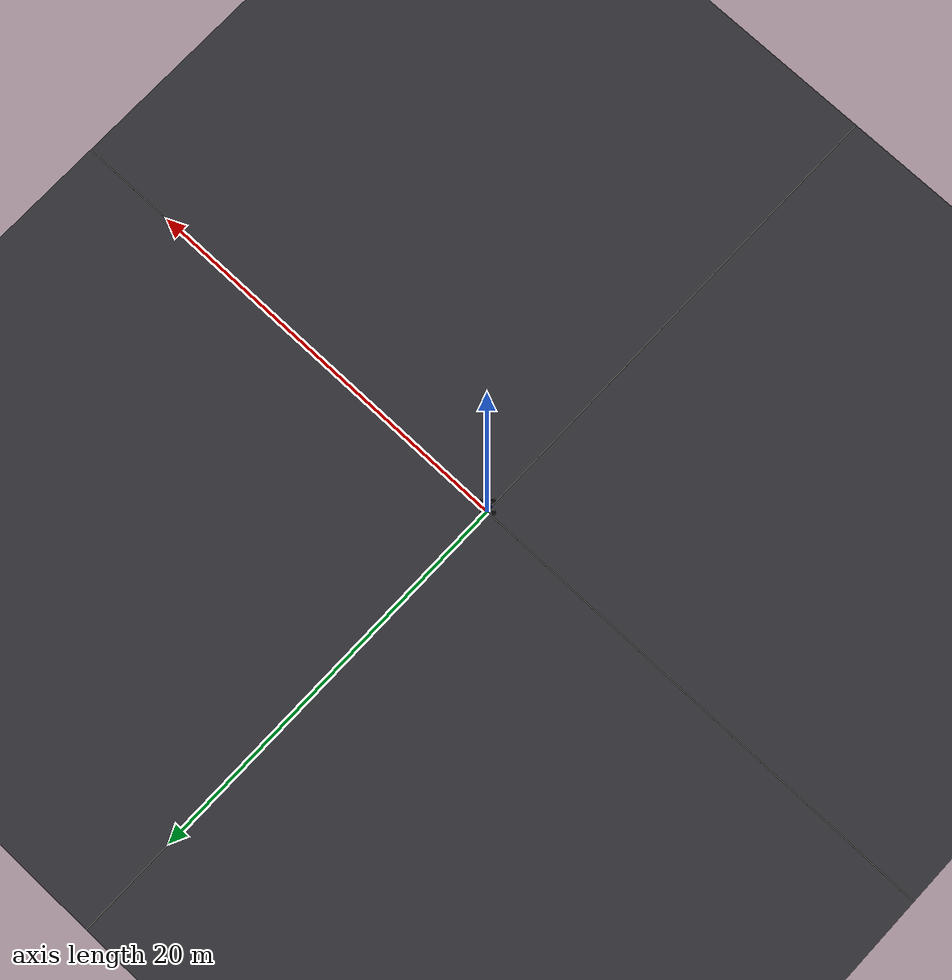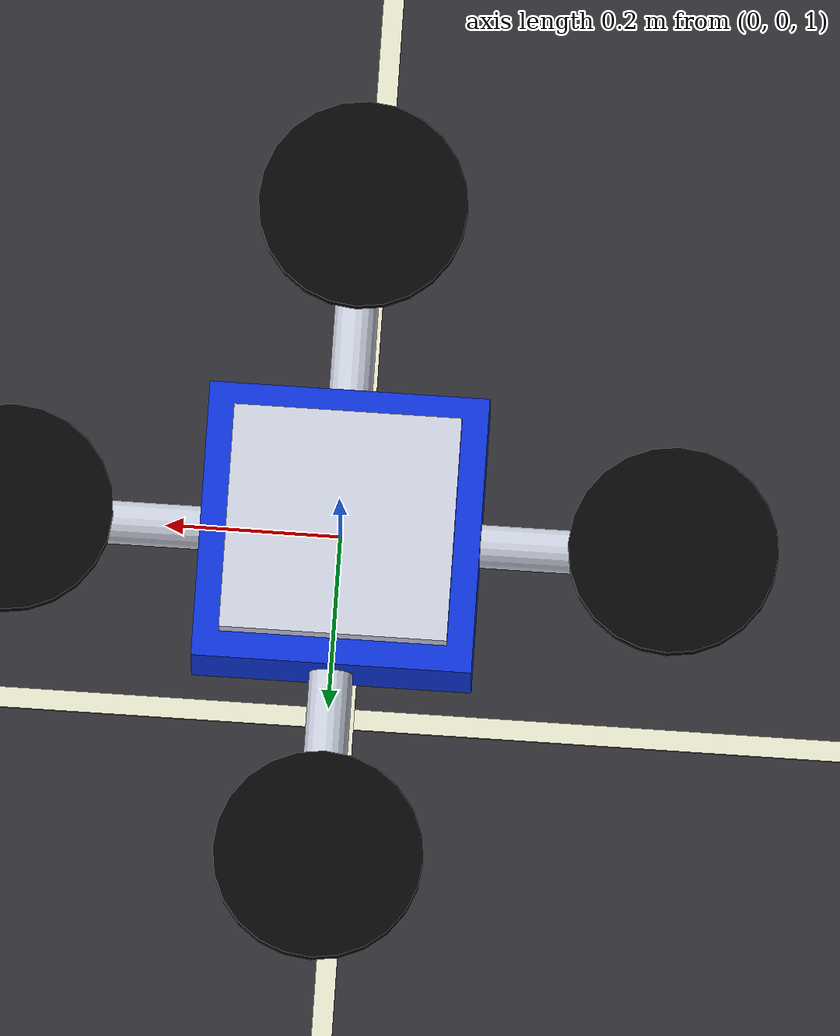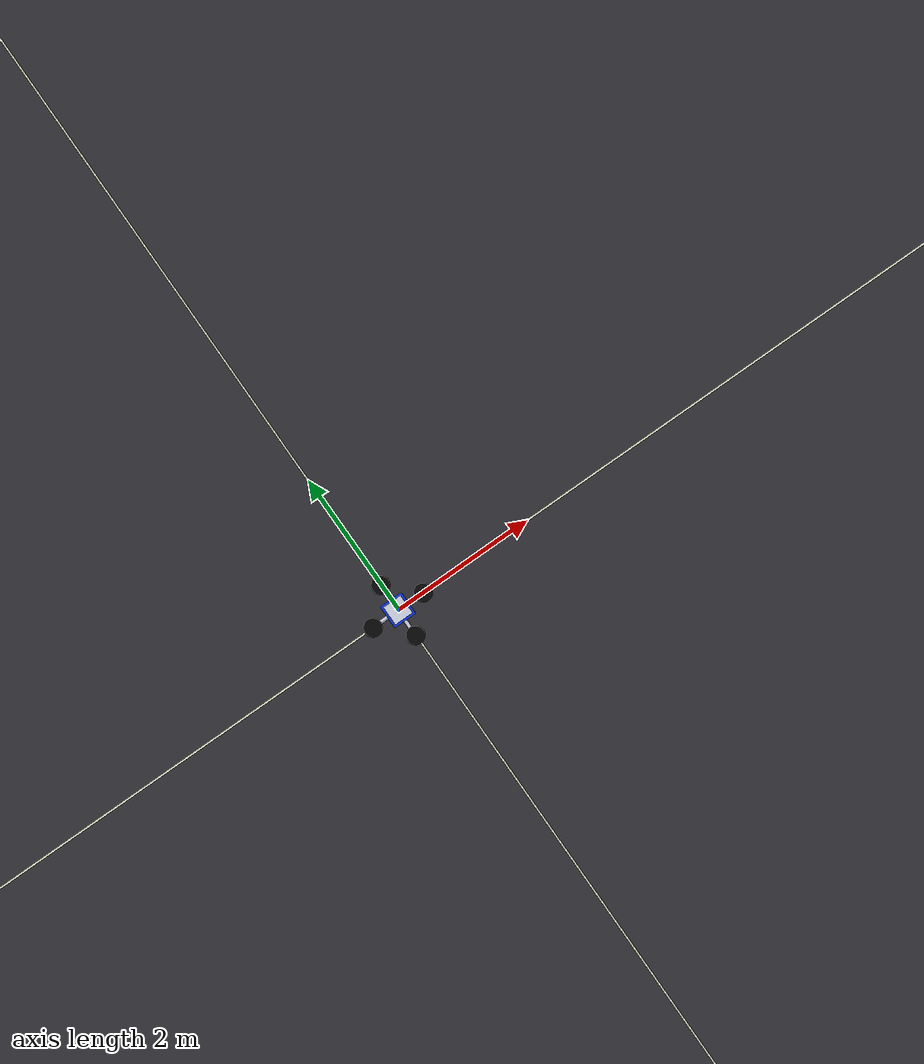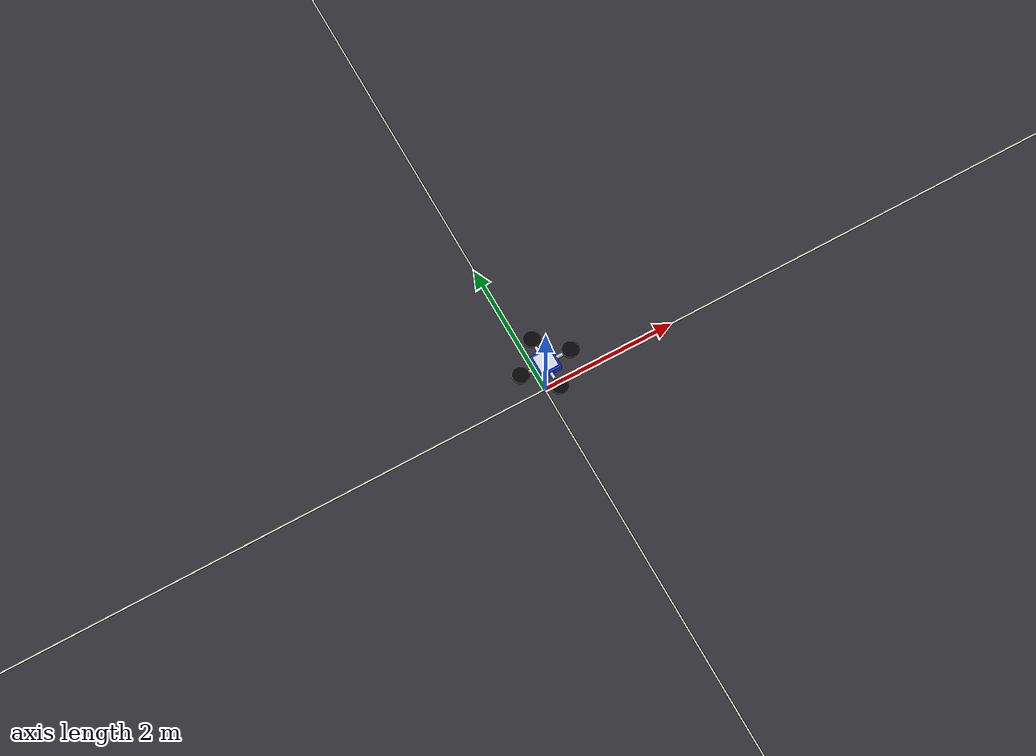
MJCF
<mujoco model="quadrotor">

    <option
        timestep="0.002"
        gravity="0 0 -9.81"
        integrator="RK4"/>

    <compiler angle="radian"/>

    <visual>

        <map
            znear="0.01"
            zfar="100"/>

        <quality
            shadowsize="2048"/>

        <headlight
            ambient="0.5 0.5 0.5"
            diffuse="0.8 0.8 0.8"
            specular="0.2 0.2 0.2"/>

        <global
            offwidth="1600"
            offheight="1000"/>

    </visual>

    <default>

        <joint
            damping="0.2"
            armature="0.01"/>

        <geom
            condim="3"
            friction="1.0 0.5 0.1"/>

    </default>

    <asset>

        <material
            name="ground"
            rgba="0.18 0.18 0.20 1"/>

        <material
            name="marking"
            rgba="0.90 0.90 0.80 1"/>

        <material
            name="body"
            rgba="0.05 0.20 0.85 1"/>

        <material
            name="light"
            rgba="0.80 0.82 0.88 1"/>

        <material
            name="black"
            rgba="0.02 0.02 0.02 1"/>

    </asset>

    <worldbody>

        <!-- ==================================================
             GROUND
             ================================================== -->

        <geom
            name="ground"
            type="plane"
            pos="0 0 0"
            size="25 25 0.1"
            material="ground"
            friction="1.5 0.7 0.1"/>

        <!-- GROUND X AXIS -->

        <geom
            name="ground_x"
            type="box"
            pos="0 0 0.002"
            size="25 0.012 0.002"
            material="marking"
            contype="0"
            conaffinity="0"/>

        <!-- GROUND Y AXIS -->

        <geom
            name="ground_y"
            type="box"
            pos="0 0 0.003"
            size="0.012 25 0.002"
            material="marking"
            contype="0"
            conaffinity="0"/>

        <!-- ==================================================
             LIGHTING
             ================================================== -->

        <light
            name="key_light"
            pos="3 -4 6"
            directional="true"
            diffuse="1 1 1"
            specular="0.2 0.2 0.2"/>

        <light
            name="fill_light"
            pos="-3 3 5"
            directional="true"
            diffuse="0.6 0.6 0.6"/>

        <!-- ==================================================
             QUADROTOR BASE
             ================================================== -->

        <body
            name="base_link"
            pos="0 0 1">

            <!-- ==================================================
                 FULL 6 DOF FREE JOINT
                 ================================================== -->

            <freejoint
                name="quadrotor_free"/>

            <!-- ==================================================
                 CENTRAL BODY
                 ================================================== -->

            <geom
                name="base_body"
                type="box"
                pos="0 0 0"
                size="0.16 0.16 0.055"
                mass="0.8"
                material="body"/>

            <!-- TOP PLATE -->

            <geom
                name="top_plate"
                type="box"
                pos="0 0 0.065"
                size="0.13 0.13 0.015"
                mass="0.15"
                material="light"/>

            <!-- ==================================================
                 FRONT ARM (+X)
                 ================================================== -->

            <geom
                name="front_arm"
                type="capsule"
                fromto="0 0 0 0.38 0 0"
                size="0.025"
                mass="0.08"
                material="light"/>

            <body
                name="front_motor"
                pos="0.38 0 0.04">

                <joint
                    name="front_rotor_joint"
                    type="hinge"
                    axis="0 0 1"
                    damping="0.01"/>

                <geom
                    name="front_rotor"
                    type="cylinder"
                    size="0.12 0.008"
                    mass="0.03"
                    material="black"/>

            </body>

            <!-- ==================================================
                 BACK ARM (-X)
                 ================================================== -->

            <geom
                name="back_arm"
                type="capsule"
                fromto="0 0 0 -0.38 0 0"
                size="0.025"
                mass="0.08"
                material="light"/>

            <body
                name="back_motor"
                pos="-0.38 0 0.04">

                <joint
                    name="back_rotor_joint"
                    type="hinge"
                    axis="0 0 1"
                    damping="0.01"/>

                <geom
                    name="back_rotor"
                    type="cylinder"
                    size="0.12 0.008"
                    mass="0.03"
                    material="black"/>

            </body>

            <!-- ==================================================
                 LEFT ARM (+Y)
                 ================================================== -->

            <geom
                name="left_arm"
                type="capsule"
                fromto="0 0 0 0 0.38 0"
                size="0.025"
                mass="0.08"
                material="light"/>

            <body
                name="left_motor"
                pos="0 0.38 0.04">

                <joint
                    name="left_rotor_joint"
                    type="hinge"
                    axis="0 0 1"
                    damping="0.01"/>

                <geom
                    name="left_rotor"
                    type="cylinder"
                    size="0.12 0.008"
                    mass="0.03"
                    material="black"/>

            </body>

            <!-- ==================================================
                 RIGHT ARM (-Y)
                 ================================================== -->

            <geom
                name="right_arm"
                type="capsule"
                fromto="0 0 0 0 -0.38 0"
                size="0.025"
                mass="0.08"
                material="light"/>

            <body
                name="right_motor"
                pos="0 -0.38 0.04">

                <joint
                    name="right_rotor_joint"
                    type="hinge"
                    axis="0 0 1"
                    damping="0.01"/>

                <geom
                    name="right_rotor"
                    type="cylinder"
                    size="0.12 0.008"
                    mass="0.03"
                    material="black"/>

            </body>

        </body>

    </worldbody>

    <actuator>

        <velocity
            name="front_motor_actuator"
            joint="front_rotor_joint"
            kv="0.5"/>

        <velocity
            name="back_motor_actuator"
            joint="back_rotor_joint"
            kv="0.5"/>

        <velocity
            name="left_motor_actuator"
            joint="left_rotor_joint"
            kv="0.5"/>

        <velocity
            name="right_motor_actuator"
            joint="right_rotor_joint"
            kv="0.5"/>

    </actuator>

</mujoco>
